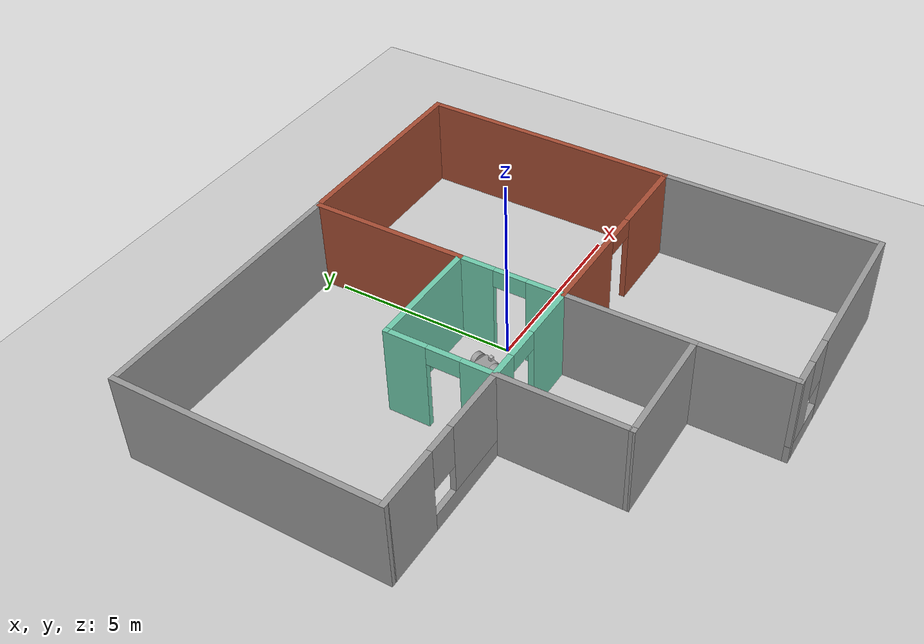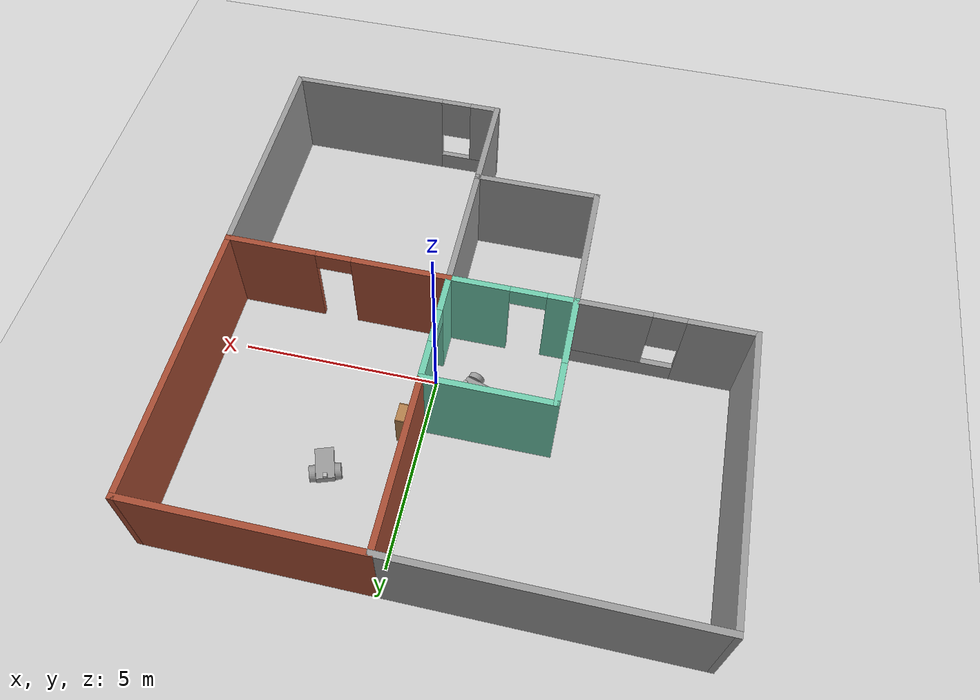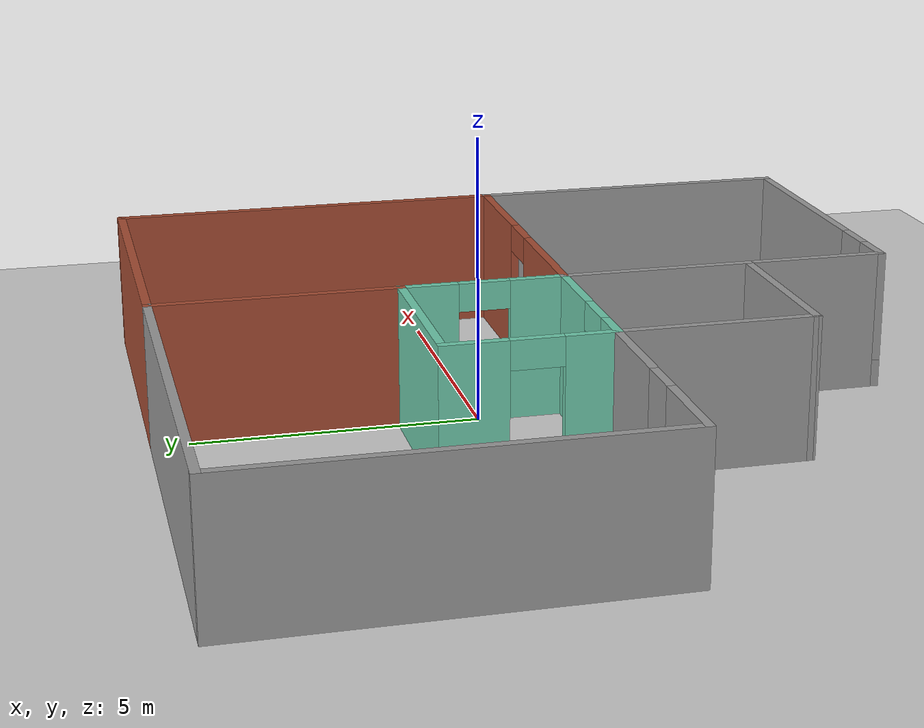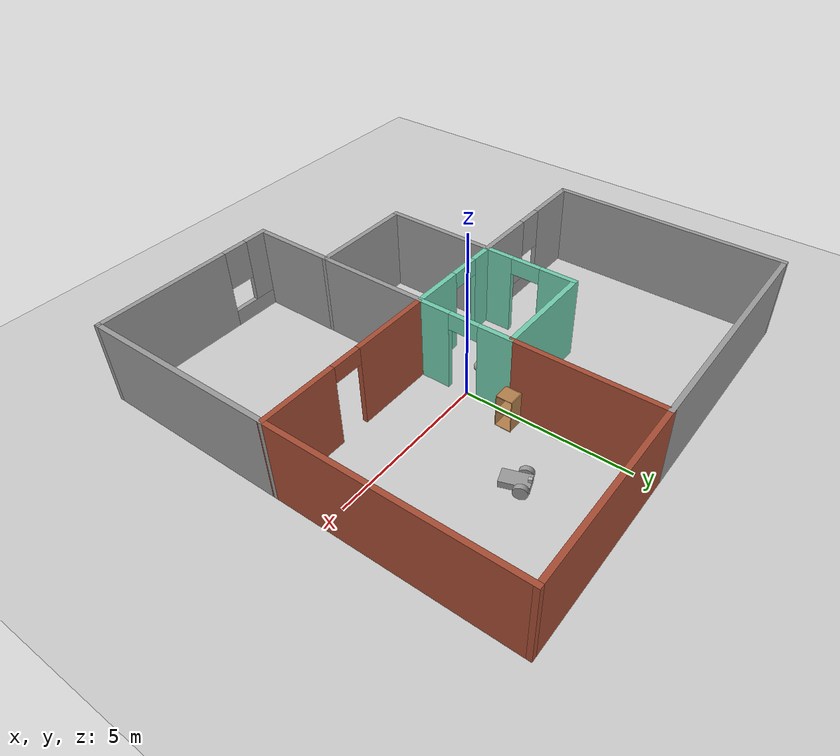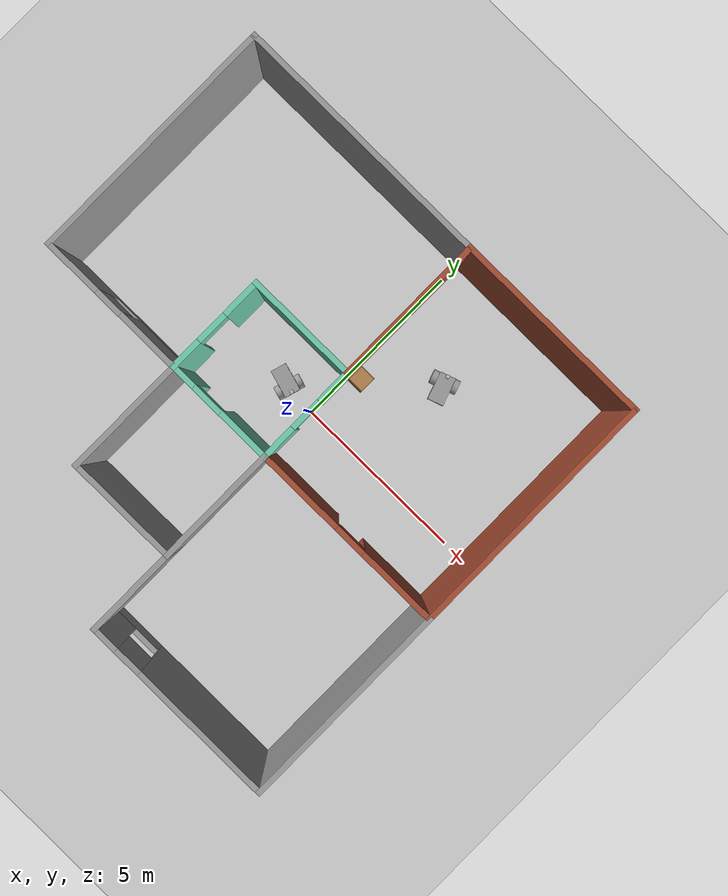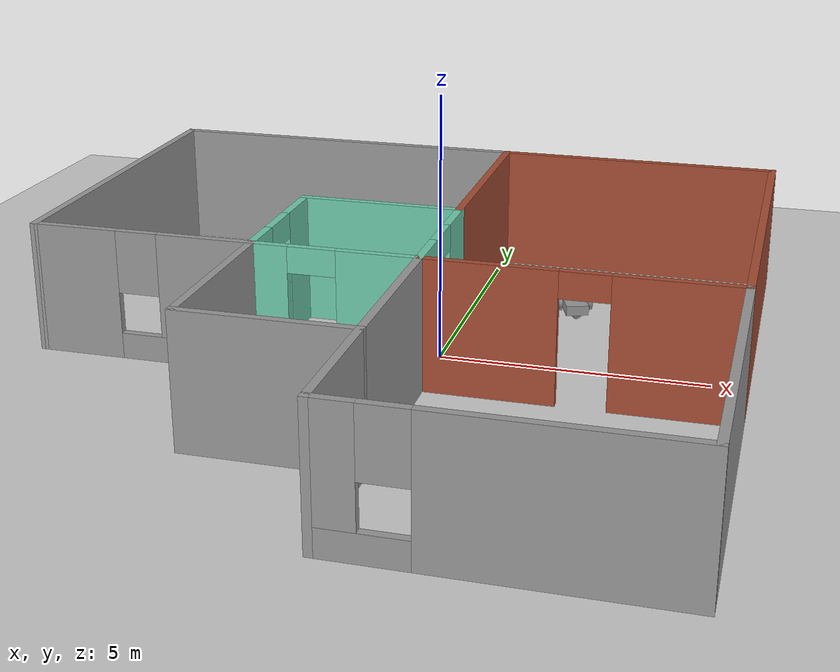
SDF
<sdf version="1.6">
 <world name="default">
  <plugin name="welcome" filename="libwelcome.so"/>
  <light name="sun" type="directional">
   <pose>0 0 10 0 -0 0</pose>
   <diffuse>0.8 0.8 0.8 1</diffuse>
   <specular>0.2 0.2 0.2 1</specular>
   <attenuation>
    <range>1000</range>
    <constant>0.9</constant>
    <linear>0.01</linear>
    <quadratic>0.001</quadratic>
   </attenuation>
   <direction>-0.5 0.1 -0.9</direction>
  </light>
  <model name="ground_plane">
   <static>1</static>
   <link name="link">
    <collision name="collision">
     <geometry><plane><normal>0 0 1</normal><size>100 100</size></plane></geometry>
     <surface><friction><ode><mu>100</mu><mu2>50</mu2></ode></friction></surface>
    </collision>
    <visual name="visual">
     <cast_shadows>0</cast_shadows>
     <geometry><plane><normal>0 0 1</normal><size>100 100</size></plane></geometry>
     <material>
      <script><uri>file://media/materials/scripts/gazebo.material</uri><name>Gazebo/Grey</name></script>
     </material>
    </visual>
   </link>
  </model>
  <gravity>0 0 -9.8</gravity>
  <magnetic_field>6e-06 2.3e-05 -4.2e-05</magnetic_field>
  <atmosphere type="adiabatic"/>
  <physics name="default_physics" default="0" type="ode">
   <max_step_size>0.001</max_step_size>
   <real_time_factor>1</real_time_factor>
   <real_time_update_rate>1000</real_time_update_rate>
  </physics>
  <scene><ambient>0.4 0.4 0.4 1</ambient><background>0.7 0.7 0.7 1</background><shadows>1</shadows></scene>
  <audio><device>default</device></audio>
  <spherical_coordinates>
   <surface_model>EARTH_WGS84</surface_model>
   <latitude_deg>0</latitude_deg>
   <longitude_deg>0</longitude_deg>
   <elevation>0</elevation>
   <heading_deg>0</heading_deg>
  </spherical_coordinates>
  <model name="model">
   <pose>-0.86393 -0.89424 0 0 -0 0</pose>
   <link name="Wall_10">
    <collision name="Wall_10_Collision">
     <geometry><box><size>5.75 0.15 2.5</size></box></geometry>
     <pose>0 0 1.25 0 -0 0</pose>
    </collision>
    <visual name="Wall_10_Visual">
     <pose>0 0 1.25 0 -0 0</pose>
     <geometry><box><size>5.75 0.15 2.5</size></box></geometry>
     <material>
      <script><uri>file://media/materials/scripts/gazebo.material</uri><name>Gazebo/Bricks</name></script>
      <ambient>1 1 1 1</ambient>
     </material>
     <meta><layer>0</layer></meta>
    </visual>
    <pose>3.67517 6.47508 0 0 -0 3.14159</pose>
   </link>
   <link name="Wall_11">
    <collision name="Wall_11_Collision">
     <geometry><box><size>4.4 0.15 2.5</size></box></geometry>
     <pose>0 0 1.25 0 -0 0</pose>
    </collision>
    <visual name="Wall_11_Visual">
     <pose>0 0 1.25 0 -0 0</pose>
     <geometry><box><size>4.4 0.15 2.5</size></box></geometry>
     <material>
      <script><uri>file://media/materials/scripts/gazebo.material</uri><name>Gazebo/Bricks</name></script>
      <ambient>1 1 1 1</ambient>
     </material>
     <meta><layer>0</layer></meta>
    </visual>
    <pose>0.875172 4.35008 0 0 -0 -1.5708</pose>
   </link>
   <link name="Wall_13">
    <collision name="Wall_13_Collision">
     <geometry><box><size>7.5 0.15 2.5</size></box></geometry>
     <pose>0 0 1.25 0 -0 0</pose>
    </collision>
    <visual name="Wall_13_Visual">
     <pose>0 0 1.25 0 -0 0</pose>
     <geometry><box><size>7.5 0.15 2.5</size></box></geometry>
     <material>
      <script><uri>file://media/materials/scripts/gazebo.material</uri><name>Gazebo/Grey</name></script>
      <ambient>1 1 1 1</ambient>
     </material>
     <meta><layer>0</layer></meta>
    </visual>
    <pose>-2.8 6.475 0 0 -0 -3.14157</pose>
   </link>
   <link name="Wall_14">
    <collision name="Wall_14_Collision">
     <geometry><box><size>7.25 0.15 2.5</size></box></geometry>
     <pose>0 0 1.25 0 -0 0</pose>
    </collision>
    <visual name="Wall_14_Visual">
     <pose>0 0 1.25 0 -0 0</pose>
     <geometry><box><size>7.25 0.15 2.5</size></box></geometry>
     <material>
      <script><uri>file://media/materials/scripts/gazebo.material</uri><name>Gazebo/Grey</name></script>
      <ambient>1 1 1 1</ambient>
     </material>
     <meta><layer>0</layer></meta>
    </visual>
    <pose>-6.47518 2.92492 0 0 -0 -1.5708</pose>
   </link>
   <link name="Wall_15">
    <pose>-4.35 -0.625001 0 0 -0 3.8e-05</pose>
    <visual name="Wall_15_Visual_0">
     <pose>-1.34375 0 1.25 0 -0 0</pose>
     <geometry><box><size>1.7125 0.15 2.5</size></box></geometry>
     <material>
      <script><uri>file://media/materials/scripts/gazebo.material</uri><name>Gazebo/Grey</name></script>
      <ambient>1 1 1 1</ambient>
     </material>
     <meta><layer>0</layer></meta>
    </visual>
    <collision name="Wall_15_Collision_0">
     <geometry><box><size>1.7125 0.15 2.5</size></box></geometry>
     <pose>-1.34375 0 1.25 0 -0 0</pose>
    </collision>
    <visual name="Wall_15_Visual_1">
     <pose>0.85625 0 0.25 0 -0 0</pose>
     <geometry><box><size>2.6875 0.15 0.5</size></box></geometry>
     <material>
      <script><uri>file://media/materials/scripts/gazebo.material</uri><name>Gazebo/Grey</name></script>
      <ambient>1 1 1 1</ambient>
     </material>
     <meta><layer>0</layer></meta>
    </visual>
    <collision name="Wall_15_Collision_1">
     <geometry><box><size>2.6875 0.15 0.5</size></box></geometry>
     <pose>0.85625 0 0.25 0 -0 0</pose>
    </collision>
    <visual name="Wall_15_Visual_2">
     <pose>1.25625 0 1.5 0 -0 0</pose>
     <geometry><box><size>1.8875 0.15 2</size></box></geometry>
     <material>
      <script><uri>file://media/materials/scripts/gazebo.material</uri><name>Gazebo/Grey</name></script>
      <ambient>1 1 1 1</ambient>
     </material>
     <meta><layer>0</layer></meta>
    </visual>
    <collision name="Wall_15_Collision_2">
     <geometry><box><size>1.8875 0.15 2</size></box></geometry>
     <pose>1.25625 0 1.5 0 -0 0</pose>
    </collision>
    <visual name="Wall_15_Visual_3">
     <pose>-0.0875 0 1.9 0 -0 0</pose>
     <geometry><box><size>0.8 0.15 1.2</size></box></geometry>
     <material>
      <script><uri>file://media/materials/scripts/gazebo.material</uri><name>Gazebo/Grey</name></script>
      <ambient>1 1 1 1</ambient>
     </material>
     <meta><layer>0</layer></meta>
    </visual>
    <collision name="Wall_15_Collision_3">
     <geometry><box><size>0.8 0.15 1.2</size></box></geometry>
     <pose>-0.0875 0 1.9 0 -0 0</pose>
    </collision>
   </link>
   <link name="Wall_16">
    <collision name="Wall_16_Collision">
     <geometry><box><size>3.5 0.15 2.5</size></box></geometry>
     <pose>0 0 1.25 0 -0 0</pose>
    </collision>
    <visual name="Wall_16_Visual">
     <pose>0 0 1.25 0 -0 0</pose>
     <geometry><box><size>3.5 0.15 2.5</size></box></geometry>
     <material>
      <script><uri>file://media/materials/scripts/gazebo.material</uri><name>Gazebo/Grey</name></script>
      <ambient>1 1 1 1</ambient>
     </material>
     <meta><layer>0</layer></meta>
    </visual>
    <pose>-2.225 -2.3 0 0 -0 -1.5709</pose>
   </link>
   <link name="Wall_17">
    <collision name="Wall_17_Collision">
     <geometry><box><size>3.25 0.15 2.5</size></box></geometry>
     <pose>0 0 1.25 0 -0 0</pose>
    </collision>
    <visual name="Wall_17_Visual">
     <pose>0 0 1.25 0 -0 0</pose>
     <geometry><box><size>3.25 0.15 2.5</size></box></geometry>
     <material>
      <script><uri>file://media/materials/scripts/gazebo.material</uri><name>Gazebo/Grey</name></script>
      <ambient>1 1 1 1</ambient>
     </material>
     <meta><layer>0</layer></meta>
    </visual>
    <pose>-0.675176 -3.97508 0 0 -0 0</pose>
   </link>
   <link name="Wall_18">
    <collision name="Wall_18_Collision">
     <geometry><box><size>3.5 0.15 2.5</size></box></geometry>
     <pose>0 0 1.25 0 -0 0</pose>
    </collision>
    <visual name="Wall_18_Visual">
     <pose>0 0 1.25 0 -0 0</pose>
     <geometry><box><size>3.5 0.15 2.5</size></box></geometry>
     <material>
      <script><uri>file://media/materials/scripts/gazebo.material</uri><name>Gazebo/Grey</name></script>
      <ambient>1 1 1 1</ambient>
     </material>
     <meta><layer>0</layer></meta>
    </visual>
    <pose>0.874998 -2.3 0 0 -0 1.57069</pose>
   </link>
   <link name="Wall_20">
    <collision name="Wall_20_Collision">
     <geometry><box><size>6 0.15 2.5</size></box></geometry>
     <pose>0 0 1.25 0 -0 0</pose>
    </collision>
    <visual name="Wall_20_Visual">
     <pose>0 0 1.25 0 -0 0</pose>
     <geometry><box><size>6 0.15 2.5</size></box></geometry>
     <material>
      <script><uri>file://media/materials/scripts/gazebo.material</uri><name>Gazebo/Grey</name></script>
      <ambient>1 1 1 1</ambient>
     </material>
     <meta><layer>0</layer></meta>
    </visual>
    <pose>6.475 -3.55 0 0 -0 -1.57086</pose>
   </link>
   <link name="Wall_21">
    <pose>3.67482 -6.47508 0 0 -0 3.14159</pose>
    <visual name="Wall_21_Visual_0">
     <pose>-0.799425 0 1.25 0 -0 0</pose>
     <geometry><box><size>4.15115 0.15 2.5</size></box></geometry>
     <material>
      <script><uri>file://media/materials/scripts/gazebo.material</uri><name>Gazebo/Grey</name></script>
      <ambient>1 1 1 1</ambient>
     </material>
     <meta><layer>0</layer></meta>
    </visual>
    <collision name="Wall_21_Collision_0">
     <geometry><box><size>4.15115 0.15 2.5</size></box></geometry>
     <pose>-0.799425 0 1.25 0 -0 0</pose>
    </collision>
    <visual name="Wall_21_Visual_1">
     <pose>2.07558 0 0.25 0 -0 0</pose>
     <geometry><box><size>1.59885 0.15 0.5</size></box></geometry>
     <material>
      <script><uri>file://media/materials/scripts/gazebo.material</uri><name>Gazebo/Grey</name></script>
      <ambient>1 1 1 1</ambient>
     </material>
     <meta><layer>0</layer></meta>
    </visual>
    <collision name="Wall_21_Collision_1">
     <geometry><box><size>1.59885 0.15 0.5</size></box></geometry>
     <pose>2.07558 0 0.25 0 -0 0</pose>
    </collision>
    <visual name="Wall_21_Visual_2">
     <pose>2.47558 0 1.5 0 -0 0</pose>
     <geometry><box><size>0.79885 0.15 2</size></box></geometry>
     <material>
      <script><uri>file://media/materials/scripts/gazebo.material</uri><name>Gazebo/Grey</name></script>
      <ambient>1 1 1 1</ambient>
     </material>
     <meta><layer>0</layer></meta>
    </visual>
    <collision name="Wall_21_Collision_2">
     <geometry><box><size>0.79885 0.15 2</size></box></geometry>
     <pose>2.47558 0 1.5 0 -0 0</pose>
    </collision>
    <visual name="Wall_21_Visual_3">
     <pose>1.67615 0 1.9 0 -0 0</pose>
     <geometry><box><size>0.8 0.15 1.2</size></box></geometry>
     <material>
      <script><uri>file://media/materials/scripts/gazebo.material</uri><name>Gazebo/Grey</name></script>
      <ambient>1 1 1 1</ambient>
     </material>
     <meta><layer>0</layer></meta>
    </visual>
    <collision name="Wall_21_Collision_3">
     <geometry><box><size>0.8 0.15 1.2</size></box></geometry>
     <pose>1.67615 0 1.9 0 -0 0</pose>
    </collision>
   </link>
   <link name="Wall_22">
    <collision name="Wall_22_Collision">
     <geometry><box><size>2.65 0.15 2.5</size></box></geometry>
     <pose>0 0 1.25 0 -0 0</pose>
    </collision>
    <visual name="Wall_22_Visual">
     <pose>0 0 1.25 0 -0 0</pose>
     <geometry><box><size>2.65 0.15 2.5</size></box></geometry>
     <material>
      <script><uri>file://media/materials/scripts/gazebo.material</uri><name>Gazebo/Grey</name></script>
      <ambient>1 1 1 1</ambient>
     </material>
     <meta><layer>0</layer></meta>
    </visual>
    <pose>0.874824 -5.22508 0 0 -0 1.5708</pose>
   </link>
   <link name="Wall_3">
    <collision name="Wall_3_Collision">
     <geometry><box><size>3.25 0.15 2.5</size></box></geometry>
     <pose>0 0 1.25 0 -0 0</pose>
    </collision>
    <visual name="Wall_3_Visual">
     <pose>0 0 1.25 0 -0 0</pose>
     <geometry><box><size>3.25 0.15 2.5</size></box></geometry>
     <material>
      <script><uri>file://media/materials/scripts/gazebo.material</uri><name>Gazebo/Grey</name></script>
      <ambient>0.435294 0.796078 0.67451 1</ambient>
     </material>
     <meta><layer>0</layer></meta>
    </visual>
    <pose>-0.674828 2.22508 0 0 -0 0</pose>
   </link>
   <link name="Wall_4">
    <pose>0.875172 0.80008 0 0 -0 -1.5708</pose>
    <visual name="Wall_4_Visual_0">
     <pose>-0.973468 0 1.25 0 -0 0</pose>
     <geometry><box><size>1.05306 0.15 2.5</size></box></geometry>
     <material>
      <script><uri>file://media/materials/scripts/gazebo.material</uri><name>Gazebo/Grey</name></script>
      <ambient>0.435294 0.796078 0.67451 1</ambient>
     </material>
     <meta><layer>0</layer></meta>
    </visual>
    <collision name="Wall_4_Collision_0">
     <geometry><box><size>1.05306 0.15 2.5</size></box></geometry>
     <pose>-0.973468 0 1.25 0 -0 0</pose>
    </collision>
    <visual name="Wall_4_Visual_1">
     <pose>0.976532 0 1.25 0 -0 0</pose>
     <geometry><box><size>1.04694 0.15 2.5</size></box></geometry>
     <material>
      <script><uri>file://media/materials/scripts/gazebo.material</uri><name>Gazebo/Grey</name></script>
      <ambient>0.435294 0.796078 0.67451 1</ambient>
     </material>
     <meta><layer>0</layer></meta>
    </visual>
    <collision name="Wall_4_Collision_1">
     <geometry><box><size>1.04694 0.15 2.5</size></box></geometry>
     <pose>0.976532 0 1.25 0 -0 0</pose>
    </collision>
    <visual name="Wall_4_Visual_2">
     <pose>0.003064 0 2.25 0 -0 0</pose>
     <geometry><box><size>0.9 0.15 0.5</size></box></geometry>
     <material>
      <script><uri>file://media/materials/scripts/gazebo.material</uri><name>Gazebo/Grey</name></script>
      <ambient>0.435294 0.796078 0.67451 1</ambient>
     </material>
     <meta><layer>0</layer></meta>
    </visual>
    <collision name="Wall_4_Collision_2">
     <geometry><box><size>0.9 0.15 0.5</size></box></geometry>
     <pose>0.003064 0 2.25 0 -0 0</pose>
    </collision>
   </link>
   <link name="Wall_5">
    <pose>-0.674828 -0.62492 0 0 -0 3.14159</pose>
    <visual name="Wall_5_Visual_0">
     <pose>-0.835737 0 1.25 0 -0 0</pose>
     <geometry><box><size>1.57853 0.15 2.5</size></box></geometry>
     <material>
      <script><uri>file://media/materials/scripts/gazebo.material</uri><name>Gazebo/Grey</name></script>
      <ambient>0.435294 0.796078 0.67451 1</ambient>
     </material>
     <meta><layer>0</layer></meta>
    </visual>
    <collision name="Wall_5_Collision_0">
     <geometry><box><size>1.57853 0.15 2.5</size></box></geometry>
     <pose>-0.835737 0 1.25 0 -0 0</pose>
    </collision>
    <visual name="Wall_5_Visual_1">
     <pose>1.23926 0 1.25 0 -0 0</pose>
     <geometry><box><size>0.771474 0.15 2.5</size></box></geometry>
     <material>
      <script><uri>file://media/materials/scripts/gazebo.material</uri><name>Gazebo/Grey</name></script>
      <ambient>0.435294 0.796078 0.67451 1</ambient>
     </material>
     <meta><layer>0</layer></meta>
    </visual>
    <collision name="Wall_5_Collision_1">
     <geometry><box><size>0.771474 0.15 2.5</size></box></geometry>
     <pose>1.23926 0 1.25 0 -0 0</pose>
    </collision>
    <visual name="Wall_5_Visual_2">
     <pose>0.403526 0 2.25 0 -0 0</pose>
     <geometry><box><size>0.9 0.15 0.5</size></box></geometry>
     <material>
      <script><uri>file://media/materials/scripts/gazebo.material</uri><name>Gazebo/Grey</name></script>
      <ambient>0.435294 0.796078 0.67451 1</ambient>
     </material>
     <meta><layer>0</layer></meta>
    </visual>
    <collision name="Wall_5_Collision_2">
     <geometry><box><size>0.9 0.15 0.5</size></box></geometry>
     <pose>0.403526 0 2.25 0 -0 0</pose>
    </collision>
   </link>
   <link name="Wall_6">
    <pose>-2.22483 0.80008 0 0 -0 1.5708</pose>
    <visual name="Wall_6_Visual_0">
     <pose>-1.02682 0 1.25 0 -0 0</pose>
     <geometry><box><size>0.946369 0.15 2.5</size></box></geometry>
     <material>
      <script><uri>file://media/materials/scripts/gazebo.material</uri><name>Gazebo/Grey</name></script>
      <ambient>0.435294 0.796078 0.67451 1</ambient>
     </material>
     <meta><layer>0</layer></meta>
    </visual>
    <collision name="Wall_6_Collision_0">
     <geometry><box><size>0.946369 0.15 2.5</size></box></geometry>
     <pose>-1.02682 0 1.25 0 -0 0</pose>
    </collision>
    <visual name="Wall_6_Visual_1">
     <pose>0.923184 0 1.25 0 -0 0</pose>
     <geometry><box><size>1.15363 0.15 2.5</size></box></geometry>
     <material>
      <script><uri>file://media/materials/scripts/gazebo.material</uri><name>Gazebo/Grey</name></script>
      <ambient>0.435294 0.796078 0.67451 1</ambient>
     </material>
     <meta><layer>0</layer></meta>
    </visual>
    <collision name="Wall_6_Collision_1">
     <geometry><box><size>1.15363 0.15 2.5</size></box></geometry>
     <pose>0.923184 0 1.25 0 -0 0</pose>
    </collision>
    <visual name="Wall_6_Visual_2">
     <pose>-0.103631 0 2.25 0 -0 0</pose>
     <geometry><box><size>0.9 0.15 0.5</size></box></geometry>
     <material>
      <script><uri>file://media/materials/scripts/gazebo.material</uri><name>Gazebo/Grey</name></script>
      <ambient>0.435294 0.796078 0.67451 1</ambient>
     </material>
     <meta><layer>0</layer></meta>
    </visual>
    <collision name="Wall_6_Collision_2">
     <geometry><box><size>0.9 0.15 0.5</size></box></geometry>
     <pose>-0.103631 0 2.25 0 -0 0</pose>
    </collision>
   </link>
   <link name="Wall_8">
    <pose>3.67517 -0.62492 0 0 -0 0</pose>
    <visual name="Wall_8_Visual_0">
     <pose>-1.61558 0 1.25 0 -0 0</pose>
     <geometry><box><size>2.51884 0.15 2.5</size></box></geometry>
     <material>
      <script><uri>file://media/materials/scripts/gazebo.material</uri><name>Gazebo/Bricks</name></script>
      <ambient>1 1 1 1</ambient>
     </material>
     <meta><layer>0</layer></meta>
    </visual>
    <collision name="Wall_8_Collision_0">
     <geometry><box><size>2.51884 0.15 2.5</size></box></geometry>
     <pose>-1.61558 0 1.25 0 -0 0</pose>
    </collision>
    <visual name="Wall_8_Visual_1">
     <pose>1.70942 0 1.25 0 -0 0</pose>
     <geometry><box><size>2.33116 0.15 2.5</size></box></geometry>
     <material>
      <script><uri>file://media/materials/scripts/gazebo.material</uri><name>Gazebo/Bricks</name></script>
      <ambient>1 1 1 1</ambient>
     </material>
     <meta><layer>0</layer></meta>
    </visual>
    <collision name="Wall_8_Collision_1">
     <geometry><box><size>2.33116 0.15 2.5</size></box></geometry>
     <pose>1.70942 0 1.25 0 -0 0</pose>
    </collision>
    <visual name="Wall_8_Visual_2">
     <pose>0.093844 0 2.25 0 -0 0</pose>
     <geometry><box><size>0.9 0.15 0.5</size></box></geometry>
     <material>
      <script><uri>file://media/materials/scripts/gazebo.material</uri><name>Gazebo/Bricks</name></script>
      <ambient>1 1 1 1</ambient>
     </material>
     <meta><layer>0</layer></meta>
    </visual>
    <collision name="Wall_8_Collision_2">
     <geometry><box><size>0.9 0.15 0.5</size></box></geometry>
     <pose>0.093844 0 2.25 0 -0 0</pose>
    </collision>
   </link>
   <link name="Wall_9">
    <collision name="Wall_9_Collision">
     <geometry><box><size>7.25 0.15 2.5</size></box></geometry>
     <pose>0 0 1.25 0 -0 0</pose>
    </collision>
    <visual name="Wall_9_Visual">
     <pose>0 0 1.25 0 -0 0</pose>
     <geometry><box><size>7.25 0.15 2.5</size></box></geometry>
     <material>
      <script><uri>file://media/materials/scripts/gazebo.material</uri><name>Gazebo/Bricks</name></script>
      <ambient>1 1 1 1</ambient>
     </material>
     <meta><layer>0</layer></meta>
    </visual>
    <pose>6.47517 2.92508 0 0 -0 1.5708</pose>
   </link>
   <static>1</static>
  </model>
  <model name="model_0">
   <link name="link_0">
    <inertial>
     <mass>1.00629</mass>
     <inertia>
      <ixx>0.119355</ixx>
      <ixy>0</ixy>
      <ixz>0</ixz>
      <iyy>0.286315</iyy>
      <iyz>0</iyz>
      <izz>0.358071</izz>
     </inertia>
    </inertial>
    <pose>-0.389773 -0 0.3 0 -0 0</pose>
    <visual name="visual">
     <geometry><box><size>0.8 0.45 0.2</size></box></geometry>
     <material>
      <lighting>1</lighting>
      <script><uri>file://media/materials/scripts/gazebo.material</uri><name>Gazebo/Grey</name></script>
      <shader type="vertex"><normal_map>__default__</normal_map></shader>
      <ambient>0.3 0.3 0.3 1</ambient>
      <diffuse>0.7 0.7 0.7 1</diffuse>
      <specular>0.01 0.01 0.01 1</specular>
      <emissive>0 0 0 1</emissive>
     </material>
    </visual>
    <collision name="collision">
     <geometry><box><size>0.8 0.45 0.2</size></box></geometry>
     <surface>
      <friction>
       <ode><mu>1</mu><mu2>1</mu2><fdir1>0 0 0</fdir1><slip1>0</slip1><slip2>0</slip2></ode>
       <torsional>
        <coefficient>1</coefficient>
        <patch_radius>0</patch_radius>
        <surface_radius>0</surface_radius>
        <use_patch_radius>1</use_patch_radius>
        <ode><slip>0</slip></ode>
       </torsional>
      </friction>
      <bounce><restitution_coefficient>0</restitution_coefficient><threshold>1e+06</threshold></bounce>
      <contact>
       <collide_without_contact>0</collide_without_contact>
       <collide_without_contact_bitmask>1</collide_without_contact_bitmask>
       <collide_bitmask>1</collide_bitmask>
       <ode>
        <soft_cfm>0</soft_cfm>
        <soft_erp>0.2</soft_erp>
        <kp>1e+13</kp>
        <kd>1</kd>
        <max_vel>0.01</max_vel>
        <min_depth>0</min_depth>
       </ode>
       <bullet>
        <split_impulse>1</split_impulse>
        <split_impulse_penetration_threshold>-0.01</split_impulse_penetration_threshold>
        <soft_cfm>0</soft_cfm>
        <soft_erp>0.2</soft_erp>
        <kp>1e+13</kp>
        <kd>1</kd>
       </bullet>
      </contact>
     </surface>
    </collision>
   </link>
   <link name="link_0_0">
    <inertial>
     <mass>1</mass>
     <inertia><ixx>0.1</ixx><ixy>0</ixy><ixz>0</ixz><iyy>0.1</iyy><iyz>0</iyz><izz>0.1</izz></inertia>
    </inertial>
    <pose>-0.689795 3.2e-05 0.199999 0 -0 0</pose>
    <visual name="visual">
     <geometry><sphere><radius>0.1</radius></sphere></geometry>
     <material>
      <lighting>1</lighting>
      <script><uri>file://media/materials/scripts/gazebo.material</uri><name>Gazebo/Grey</name></script>
      <shader type="vertex"><normal_map>__default__</normal_map></shader>
      <ambient>0.3 0.3 0.3 1</ambient>
      <diffuse>0.7 0.7 0.7 1</diffuse>
      <specular>0.01 0.01 0.01 1</specular>
      <emissive>0 0 0 1</emissive>
     </material>
    </visual>
    <collision name="collision">
     <geometry><sphere><radius>0.1</radius></sphere></geometry>
     <surface>
      <friction>
       <ode><mu>1</mu><mu2>1</mu2><fdir1>0 0 0</fdir1><slip1>0</slip1><slip2>0</slip2></ode>
       <torsional>
        <coefficient>1</coefficient>
        <patch_radius>0</patch_radius>
        <surface_radius>0</surface_radius>
        <use_patch_radius>1</use_patch_radius>
        <ode><slip>0</slip></ode>
       </torsional>
      </friction>
      <bounce><restitution_coefficient>0</restitution_coefficient><threshold>1e+06</threshold></bounce>
      <contact>
       <collide_without_contact>0</collide_without_contact>
       <collide_without_contact_bitmask>1</collide_without_contact_bitmask>
       <collide_bitmask>1</collide_bitmask>
       <ode>
        <soft_cfm>0</soft_cfm>
        <soft_erp>0.2</soft_erp>
        <kp>1e+13</kp>
        <kd>1</kd>
        <max_vel>0.01</max_vel>
        <min_depth>0</min_depth>
       </ode>
       <bullet>
        <split_impulse>1</split_impulse>
        <split_impulse_penetration_threshold>-0.01</split_impulse_penetration_threshold>
        <soft_cfm>0</soft_cfm>
        <soft_erp>0.2</soft_erp>
        <kp>1e+13</kp>
        <kd>1</kd>
       </bullet>
      </contact>
     </surface>
    </collision>
   </link>
   <link name="link_1">
    <inertial>
     <mass>1</mass>
     <inertia><ixx>0.145833</ixx><ixy>0</ixy><ixz>0</ixz><iyy>0.145833</iyy><iyz>0</iyz><izz>0.125</izz></inertia>
    </inertial>
    <pose>-0.189783 -0.300107 0.300001 1.5707 -0 0</pose>
    <visual name="visual">
     <geometry><cylinder><radius>0.2</radius><length>0.15</length></cylinder></geometry>
     <material>
      <lighting>1</lighting>
      <script><uri>file://media/materials/scripts/gazebo.material</uri><name>Gazebo/Grey</name></script>
      <shader type="vertex"><normal_map>__default__</normal_map></shader>
      <ambient>0.3 0.3 0.3 1</ambient>
      <diffuse>0.7 0.7 0.7 1</diffuse>
      <specular>0.01 0.01 0.01 1</specular>
      <emissive>0 0 0 1</emissive>
     </material>
    </visual>
    <collision name="collision">
     <geometry><cylinder><radius>0.2</radius><length>0.15</length></cylinder></geometry>
     <surface>
      <friction>
       <ode><mu>1</mu><mu2>1</mu2><fdir1>0 0 0</fdir1><slip1>0</slip1><slip2>0</slip2></ode>
       <torsional>
        <coefficient>1</coefficient>
        <patch_radius>0</patch_radius>
        <surface_radius>0</surface_radius>
        <use_patch_radius>1</use_patch_radius>
        <ode><slip>0</slip></ode>
       </torsional>
      </friction>
      <bounce><restitution_coefficient>0</restitution_coefficient><threshold>1e+06</threshold></bounce>
      <contact>
       <collide_without_contact>0</collide_without_contact>
       <collide_without_contact_bitmask>1</collide_without_contact_bitmask>
       <collide_bitmask>1</collide_bitmask>
       <ode>
        <soft_cfm>0</soft_cfm>
        <soft_erp>0.2</soft_erp>
        <kp>1e+13</kp>
        <kd>1</kd>
        <max_vel>0.01</max_vel>
        <min_depth>0</min_depth>
       </ode>
       <bullet>
        <split_impulse>1</split_impulse>
        <split_impulse_penetration_threshold>-0.01</split_impulse_penetration_threshold>
        <soft_cfm>0</soft_cfm>
        <soft_erp>0.2</soft_erp>
        <kp>1e+13</kp>
        <kd>1</kd>
       </bullet>
      </contact>
     </surface>
    </collision>
   </link>
   <link name="link_1_clone">
    <inertial>
     <mass>1</mass>
     <inertia><ixx>0.145833</ixx><ixy>0</ixy><ixz>0</ixz><iyy>0.145833</iyy><iyz>0</iyz><izz>0.125</izz></inertia>
    </inertial>
    <pose>-0.189716 0.306996 0.300002 1.5707 -0 0</pose>
    <visual name="visual">
     <geometry><cylinder><radius>0.2</radius><length>0.15</length></cylinder></geometry>
     <material>
      <lighting>1</lighting>
      <script><uri>file://media/materials/scripts/gazebo.material</uri><name>Gazebo/Grey</name></script>
      <shader type="vertex"><normal_map>__default__</normal_map></shader>
      <ambient>0.3 0.3 0.3 1</ambient>
      <diffuse>0.7 0.7 0.7 1</diffuse>
      <specular>0.01 0.01 0.01 1</specular>
      <emissive>0 0 0 1</emissive>
     </material>
    </visual>
    <collision name="collision">
     <geometry><cylinder><radius>0.2</radius><length>0.15</length></cylinder></geometry>
     <surface>
      <friction>
       <ode><mu>1</mu><mu2>1</mu2><fdir1>0 0 0</fdir1><slip1>0</slip1><slip2>0</slip2></ode>
       <torsional>
        <coefficient>1</coefficient>
        <patch_radius>0</patch_radius>
        <surface_radius>0</surface_radius>
        <use_patch_radius>1</use_patch_radius>
        <ode><slip>0</slip></ode>
       </torsional>
      </friction>
      <bounce><restitution_coefficient>0</restitution_coefficient><threshold>1e+06</threshold></bounce>
      <contact>
       <collide_without_contact>0</collide_without_contact>
       <collide_without_contact_bitmask>1</collide_without_contact_bitmask>
       <collide_bitmask>1</collide_bitmask>
       <ode>
        <soft_cfm>0</soft_cfm>
        <soft_erp>0.2</soft_erp>
        <kp>1e+13</kp>
        <kd>1</kd>
        <max_vel>0.01</max_vel>
        <min_depth>0</min_depth>
       </ode>
       <bullet>
        <split_impulse>1</split_impulse>
        <split_impulse_penetration_threshold>-0.01</split_impulse_penetration_threshold>
        <soft_cfm>0</soft_cfm>
        <soft_erp>0.2</soft_erp>
        <kp>1e+13</kp>
        <kd>1</kd>
       </bullet>
      </contact>
     </surface>
    </collision>
   </link>
   <model name="depth_camera">
    <link name="link">
     <pose>0 0 0.05 0 -0 0</pose>
     <inertial>
      <mass>0.1</mass>
      <inertia>
       <ixx>0.000166667</ixx>
       <iyy>0.000166667</iyy>
       <izz>0.000166667</izz>
       <ixy>0</ixy>
       <ixz>0</ixz>
       <iyz>0</iyz>
      </inertia>
     </inertial>
     <collision name="collision"><geometry><box><size>0.1 0.1 0.1</size></box></geometry></collision>
     <visual name="visual"><geometry><box><size>0.1 0.1 0.1</size></box></geometry></visual>
     <sensor name="camera" type="depth">
      <camera name="__default__">
       <horizontal_fov>1.047</horizontal_fov>
       <image><width>320</width><height>240</height></image>
       <clip><near>0.1</near><far>100</far></clip>
      </camera>
      <always_on>1</always_on>
      <update_rate>30</update_rate>
      <visualize>1</visualize>
     </sensor>
    </link>
    <pose>0.010255 -3.8e-05 0.449999 0.198715 -1.57079 -0.198715</pose>
   </model>
   <joint name="link_0_JOINT_1" type="revolute">
    <parent>link_0</parent>
    <child>link_1</child>
    <axis>
     <xyz>0 0 1</xyz>
     <use_parent_model_frame>0</use_parent_model_frame>
     <limit>
      <lower>-1.79769e+308</lower>
      <upper>1.79769e+308</upper>
      <effort>-1</effort>
      <velocity>-1</velocity>
     </limit>
     <dynamics>
      <spring_reference>0</spring_reference>
      <spring_stiffness>0</spring_stiffness>
      <damping>0</damping>
      <friction>0</friction>
     </dynamics>
    </axis>
    <physics>
     <ode><limit><cfm>0</cfm><erp>0.2</erp></limit><suspension><cfm>0</cfm><erp>0.2</erp></suspension></ode>
    </physics>
   </joint>
   <joint name="link_0_JOINT_2" type="revolute">
    <parent>link_0</parent>
    <child>link_1_clone</child>
    <axis>
     <xyz>1 0 0</xyz>
     <use_parent_model_frame>0</use_parent_model_frame>
     <limit>
      <lower>-1.79769e+308</lower>
      <upper>1.79769e+308</upper>
      <effort>-1</effort>
      <velocity>-1</velocity>
     </limit>
     <dynamics>
      <spring_reference>0</spring_reference>
      <spring_stiffness>0</spring_stiffness>
      <damping>0</damping>
      <friction>0</friction>
     </dynamics>
    </axis>
    <physics>
     <ode><limit><cfm>0</cfm><erp>0.2</erp></limit><suspension><cfm>0</cfm><erp>0.2</erp></suspension></ode>
    </physics>
   </joint>
   <joint name="link_0_JOINT_3" type="ball">
    <parent>link_0</parent>
    <child>link_0_0</child>
    <physics>
     <ode><limit><cfm>0</cfm><erp>0.2</erp></limit><suspension><cfm>0</cfm><erp>0.2</erp></suspension></ode>
    </physics>
   </joint>
   <joint name="link_JOINT_5" type="fixed">
    <parent>depth_camera::link</parent>
    <child>link_0</child>
    <physics>
     <ode><limit><cfm>0</cfm><erp>0.2</erp></limit><suspension><cfm>0</cfm><erp>0.2</erp></suspension></ode>
    </physics>
   </joint>
   <static>0</static>
   <pose>-0.716864 0.010579 -0.099999 -2.4e-05 0 -0.286252</pose>
  </model>
  <model name="model_1">
   <link name="link_0">
    <inertial>
     <mass>1.00629</mass>
     <inertia>
      <ixx>0.119355</ixx>
      <ixy>0</ixy>
      <ixz>0</ixz>
      <iyy>0.286315</iyy>
      <iyz>0</iyz>
      <izz>0.358071</izz>
     </inertia>
    </inertial>
    <pose>-0.389773 -0 0.3 0 -0 0</pose>
    <visual name="visual">
     <geometry><box><size>0.8 0.45 0.2</size></box></geometry>
     <material>
      <lighting>1</lighting>
      <script><uri>file://media/materials/scripts/gazebo.material</uri><name>Gazebo/Grey</name></script>
      <shader type="vertex"><normal_map>__default__</normal_map></shader>
      <ambient>0.3 0.3 0.3 1</ambient>
      <diffuse>0.7 0.7 0.7 1</diffuse>
      <specular>0.01 0.01 0.01 1</specular>
      <emissive>0 0 0 1</emissive>
     </material>
    </visual>
    <collision name="collision">
     <geometry><box><size>0.8 0.45 0.2</size></box></geometry>
     <surface>
      <friction>
       <ode><mu>1</mu><mu2>1</mu2><fdir1>0 0 0</fdir1><slip1>0</slip1><slip2>0</slip2></ode>
       <torsional>
        <coefficient>1</coefficient>
        <patch_radius>0</patch_radius>
        <surface_radius>0</surface_radius>
        <use_patch_radius>1</use_patch_radius>
        <ode><slip>0</slip></ode>
       </torsional>
      </friction>
      <bounce><restitution_coefficient>0</restitution_coefficient><threshold>1e+06</threshold></bounce>
      <contact>
       <collide_without_contact>0</collide_without_contact>
       <collide_without_contact_bitmask>1</collide_without_contact_bitmask>
       <collide_bitmask>1</collide_bitmask>
       <ode>
        <soft_cfm>0</soft_cfm>
        <soft_erp>0.2</soft_erp>
        <kp>1e+13</kp>
        <kd>1</kd>
        <max_vel>0.01</max_vel>
        <min_depth>0</min_depth>
       </ode>
       <bullet>
        <split_impulse>1</split_impulse>
        <split_impulse_penetration_threshold>-0.01</split_impulse_penetration_threshold>
        <soft_cfm>0</soft_cfm>
        <soft_erp>0.2</soft_erp>
        <kp>1e+13</kp>
        <kd>1</kd>
       </bullet>
      </contact>
     </surface>
    </collision>
   </link>
   <link name="link_0_0">
    <inertial>
     <mass>1</mass>
     <inertia><ixx>0.1</ixx><ixy>0</ixy><ixz>0</ixz><iyy>0.1</iyy><iyz>0</iyz><izz>0.1</izz></inertia>
    </inertial>
    <pose>-0.689795 3.2e-05 0.199999 0 -0 0</pose>
    <visual name="visual">
     <geometry><sphere><radius>0.1</radius></sphere></geometry>
     <material>
      <lighting>1</lighting>
      <script><uri>file://media/materials/scripts/gazebo.material</uri><name>Gazebo/Grey</name></script>
      <shader type="vertex"><normal_map>__default__</normal_map></shader>
      <ambient>0.3 0.3 0.3 1</ambient>
      <diffuse>0.7 0.7 0.7 1</diffuse>
      <specular>0.01 0.01 0.01 1</specular>
      <emissive>0 0 0 1</emissive>
     </material>
    </visual>
    <collision name="collision">
     <geometry><sphere><radius>0.1</radius></sphere></geometry>
     <surface>
      <friction>
       <ode><mu>1</mu><mu2>1</mu2><fdir1>0 0 0</fdir1><slip1>0</slip1><slip2>0</slip2></ode>
       <torsional>
        <coefficient>1</coefficient>
        <patch_radius>0</patch_radius>
        <surface_radius>0</surface_radius>
        <use_patch_radius>1</use_patch_radius>
        <ode><slip>0</slip></ode>
       </torsional>
      </friction>
      <bounce><restitution_coefficient>0</restitution_coefficient><threshold>1e+06</threshold></bounce>
      <contact>
       <collide_without_contact>0</collide_without_contact>
       <collide_without_contact_bitmask>1</collide_without_contact_bitmask>
       <collide_bitmask>1</collide_bitmask>
       <ode>
        <soft_cfm>0</soft_cfm>
        <soft_erp>0.2</soft_erp>
        <kp>1e+13</kp>
        <kd>1</kd>
        <max_vel>0.01</max_vel>
        <min_depth>0</min_depth>
       </ode>
       <bullet>
        <split_impulse>1</split_impulse>
        <split_impulse_penetration_threshold>-0.01</split_impulse_penetration_threshold>
        <soft_cfm>0</soft_cfm>
        <soft_erp>0.2</soft_erp>
        <kp>1e+13</kp>
        <kd>1</kd>
       </bullet>
      </contact>
     </surface>
    </collision>
   </link>
   <link name="link_1">
    <inertial>
     <mass>1</mass>
     <inertia><ixx>0.145833</ixx><ixy>0</ixy><ixz>0</ixz><iyy>0.145833</iyy><iyz>0</iyz><izz>0.125</izz></inertia>
    </inertial>
    <pose>-0.189783 -0.300107 0.300001 1.5707 -0 0</pose>
    <visual name="visual">
     <geometry><cylinder><radius>0.2</radius><length>0.15</length></cylinder></geometry>
     <material>
      <lighting>1</lighting>
      <script><uri>file://media/materials/scripts/gazebo.material</uri><name>Gazebo/Grey</name></script>
      <shader type="vertex"><normal_map>__default__</normal_map></shader>
      <ambient>0.3 0.3 0.3 1</ambient>
      <diffuse>0.7 0.7 0.7 1</diffuse>
      <specular>0.01 0.01 0.01 1</specular>
      <emissive>0 0 0 1</emissive>
     </material>
    </visual>
    <collision name="collision">
     <geometry><cylinder><radius>0.2</radius><length>0.15</length></cylinder></geometry>
     <surface>
      <friction>
       <ode><mu>1</mu><mu2>1</mu2><fdir1>0 0 0</fdir1><slip1>0</slip1><slip2>0</slip2></ode>
       <torsional>
        <coefficient>1</coefficient>
        <patch_radius>0</patch_radius>
        <surface_radius>0</surface_radius>
        <use_patch_radius>1</use_patch_radius>
        <ode><slip>0</slip></ode>
       </torsional>
      </friction>
      <bounce><restitution_coefficient>0</restitution_coefficient><threshold>1e+06</threshold></bounce>
      <contact>
       <collide_without_contact>0</collide_without_contact>
       <collide_without_contact_bitmask>1</collide_without_contact_bitmask>
       <collide_bitmask>1</collide_bitmask>
       <ode>
        <soft_cfm>0</soft_cfm>
        <soft_erp>0.2</soft_erp>
        <kp>1e+13</kp>
        <kd>1</kd>
        <max_vel>0.01</max_vel>
        <min_depth>0</min_depth>
       </ode>
       <bullet>
        <split_impulse>1</split_impulse>
        <split_impulse_penetration_threshold>-0.01</split_impulse_penetration_threshold>
        <soft_cfm>0</soft_cfm>
        <soft_erp>0.2</soft_erp>
        <kp>1e+13</kp>
        <kd>1</kd>
       </bullet>
      </contact>
     </surface>
    </collision>
   </link>
   <link name="link_1_clone">
    <inertial>
     <mass>1</mass>
     <inertia><ixx>0.145833</ixx><ixy>0</ixy><ixz>0</ixz><iyy>0.145833</iyy><iyz>0</iyz><izz>0.125</izz></inertia>
    </inertial>
    <pose>-0.189716 0.306996 0.300002 1.5707 -0 0</pose>
    <visual name="visual">
     <geometry><cylinder><radius>0.2</radius><length>0.15</length></cylinder></geometry>
     <material>
      <lighting>1</lighting>
      <script><uri>file://media/materials/scripts/gazebo.material</uri><name>Gazebo/Grey</name></script>
      <shader type="vertex"><normal_map>__default__</normal_map></shader>
      <ambient>0.3 0.3 0.3 1</ambient>
      <diffuse>0.7 0.7 0.7 1</diffuse>
      <specular>0.01 0.01 0.01 1</specular>
      <emissive>0 0 0 1</emissive>
     </material>
    </visual>
    <collision name="collision">
     <geometry><cylinder><radius>0.2</radius><length>0.15</length></cylinder></geometry>
     <surface>
      <friction>
       <ode><mu>1</mu><mu2>1</mu2><fdir1>0 0 0</fdir1><slip1>0</slip1><slip2>0</slip2></ode>
       <torsional>
        <coefficient>1</coefficient>
        <patch_radius>0</patch_radius>
        <surface_radius>0</surface_radius>
        <use_patch_radius>1</use_patch_radius>
        <ode><slip>0</slip></ode>
       </torsional>
      </friction>
      <bounce><restitution_coefficient>0</restitution_coefficient><threshold>1e+06</threshold></bounce>
      <contact>
       <collide_without_contact>0</collide_without_contact>
       <collide_without_contact_bitmask>1</collide_without_contact_bitmask>
       <collide_bitmask>1</collide_bitmask>
       <ode>
        <soft_cfm>0</soft_cfm>
        <soft_erp>0.2</soft_erp>
        <kp>1e+13</kp>
        <kd>1</kd>
        <max_vel>0.01</max_vel>
        <min_depth>0</min_depth>
       </ode>
       <bullet>
        <split_impulse>1</split_impulse>
        <split_impulse_penetration_threshold>-0.01</split_impulse_penetration_threshold>
        <soft_cfm>0</soft_cfm>
        <soft_erp>0.2</soft_erp>
        <kp>1e+13</kp>
        <kd>1</kd>
       </bullet>
      </contact>
     </surface>
    </collision>
   </link>
   <model name="depth_camera">
    <link name="link">
     <pose>0 0 0.05 0 -0 0</pose>
     <inertial>
      <mass>0.1</mass>
      <inertia>
       <ixx>0.000166667</ixx>
       <iyy>0.000166667</iyy>
       <izz>0.000166667</izz>
       <ixy>0</ixy>
       <ixz>0</ixz>
       <iyz>0</iyz>
      </inertia>
     </inertial>
     <collision name="collision"><geometry><box><size>0.1 0.1 0.1</size></box></geometry></collision>
     <visual name="visual"><geometry><box><size>0.1 0.1 0.1</size></box></geometry></visual>
     <sensor name="camera" type="depth">
      <camera name="__default__">
       <horizontal_fov>1.047</horizontal_fov>
       <image><width>320</width><height>240</height></image>
       <clip><near>0.1</near><far>100</far></clip>
      </camera>
      <always_on>1</always_on>
      <update_rate>30</update_rate>
      <visualize>1</visualize>
     </sensor>
    </link>
    <pose>0.010255 -3.8e-05 0.449999 0.198715 -1.57079 -0.198715</pose>
   </model>
   <joint name="link_0_JOINT_1" type="revolute">
    <parent>link_0</parent>
    <child>link_1</child>
    <axis>
     <xyz>0 0 1</xyz>
     <use_parent_model_frame>0</use_parent_model_frame>
     <limit>
      <lower>-1.79769e+308</lower>
      <upper>1.79769e+308</upper>
      <effort>-1</effort>
      <velocity>-1</velocity>
     </limit>
     <dynamics>
      <spring_reference>0</spring_reference>
      <spring_stiffness>0</spring_stiffness>
      <damping>0</damping>
      <friction>0</friction>
     </dynamics>
    </axis>
    <physics>
     <ode><limit><cfm>0</cfm><erp>0.2</erp></limit><suspension><cfm>0</cfm><erp>0.2</erp></suspension></ode>
    </physics>
   </joint>
   <joint name="link_0_JOINT_2" type="revolute">
    <parent>link_0</parent>
    <child>link_1_clone</child>
    <axis>
     <xyz>1 0 0</xyz>
     <use_parent_model_frame>0</use_parent_model_frame>
     <limit>
      <lower>-1.79769e+308</lower>
      <upper>1.79769e+308</upper>
      <effort>-1</effort>
      <velocity>-1</velocity>
     </limit>
     <dynamics>
      <spring_reference>0</spring_reference>
      <spring_stiffness>0</spring_stiffness>
      <damping>0</damping>
      <friction>0</friction>
     </dynamics>
    </axis>
    <physics>
     <ode><limit><cfm>0</cfm><erp>0.2</erp></limit><suspension><cfm>0</cfm><erp>0.2</erp></suspension></ode>
    </physics>
   </joint>
   <joint name="link_0_JOINT_3" type="ball">
    <parent>link_0</parent>
    <child>link_0_0</child>
    <physics>
     <ode><limit><cfm>0</cfm><erp>0.2</erp></limit><suspension><cfm>0</cfm><erp>0.2</erp></suspension></ode>
    </physics>
   </joint>
   <joint name="link_JOINT_5" type="fixed">
    <parent>depth_camera::link</parent>
    <child>link_0</child>
    <physics>
     <ode><limit><cfm>0</cfm><erp>0.2</erp></limit><suspension><cfm>0</cfm><erp>0.2</erp></suspension></ode>
    </physics>
   </joint>
   <static>0</static>
   <pose>1.90157 3.25296 -0.099997 -2e-05 -7e-06 1.90427</pose>
  </model>
  <model name="cabinet">
   <static>1</static>
   <link name="cabinet_bottom_plate">
    <inertial>
     <pose>0 0 -1 0 -0 0</pose>
     <inertia><ixx>2.05</ixx><ixy>0</ixy><ixz>0</ixz><iyy>2.05</iyy><iyz>0</iyz><izz>2.05</izz></inertia>
     <mass>25</mass>
    </inertial>
    <collision name="cabinet_bottom_plate_geom">
     <pose>0 0 0.01 0 -0 0</pose>
     <geometry><box><size>0.45 0.45 0.02</size></box></geometry>
    </collision>
    <visual name="cabinet_bottom_plate_geom_visual">
     <pose>0 0 0.01 0 -0 0</pose>
     <geometry><box><size>0.45 0.45 0.02</size></box></geometry>
     <material>
      <script><uri>file://media/materials/scripts/gazebo.material</uri><name>Gazebo/Wood</name></script>
     </material>
    </visual>
    <collision name="cabinet_bottom_plate_geom_cabinet_back_plate">
     <pose>0.235 0 0.51 0 -0 0</pose>
     <geometry><box><size>0.02 0.45 1.02</size></box></geometry>
    </collision>
    <visual name="cabinet_bottom_plate_geom_cabinet_back_plate_visual">
     <pose>0.235 0 0.51 0 -0 0</pose>
     <geometry><box><size>0.02 0.45 1.02</size></box></geometry>
     <material>
      <script><uri>file://media/materials/scripts/gazebo.material</uri><name>Gazebo/Wood</name></script>
     </material>
    </visual>
    <collision name="cabinet_bottom_plate_geom_cabinet_left_plate">
     <pose>0 0.235 0.51 0 -0 0</pose>
     <geometry><box><size>0.45 0.02 1.02</size></box></geometry>
    </collision>
    <visual name="cabinet_bottom_plate_geom_cabinet_left_plate_visual">
     <pose>0 0.235 0.51 0 -0 0</pose>
     <geometry><box><size>0.45 0.02 1.02</size></box></geometry>
     <material>
      <script><uri>file://media/materials/scripts/gazebo.material</uri><name>Gazebo/Wood</name></script>
     </material>
    </visual>
    <collision name="cabinet_bottom_plate_geom_cabinet_middle_plate">
     <pose>0 0 0.51 0 -0 0</pose>
     <geometry><box><size>0.45 0.45 0.02</size></box></geometry>
    </collision>
    <visual name="cabinet_bottom_plate_geom_cabinet_middle_plate_visual">
     <pose>0 0 0.51 0 -0 0</pose>
     <geometry><box><size>0.45 0.45 0.02</size></box></geometry>
     <material>
      <script><uri>file://media/materials/scripts/gazebo.material</uri><name>Gazebo/Wood</name></script>
     </material>
    </visual>
    <collision name="cabinet_bottom_plate_geom_cabinet_right_plate">
     <pose>0 -0.235 0.51 0 -0 0</pose>
     <geometry><box><size>0.45 0.02 1.02</size></box></geometry>
    </collision>
    <visual name="cabinet_bottom_plate_geom_cabinet_right_plate_visual">
     <pose>0 -0.235 0.51 0 -0 0</pose>
     <geometry><box><size>0.45 0.02 1.02</size></box></geometry>
     <material>
      <script><uri>file://media/materials/scripts/gazebo.material</uri><name>Gazebo/Wood</name></script>
     </material>
    </visual>
    <collision name="cabinet_bottom_plate_geom_cabinet_top_plate">
     <pose>0 0 1.01 0 -0 0</pose>
     <geometry><box><size>0.45 0.45 0.02</size></box></geometry>
    </collision>
    <visual name="cabinet_bottom_plate_geom_cabinet_top_plate_visual">
     <pose>0 0 1.01 0 -0 0</pose>
     <geometry><box><size>0.45 0.45 0.02</size></box></geometry>
     <material>
      <script><uri>file://media/materials/scripts/gazebo.material</uri><name>Gazebo/Wood</name></script>
     </material>
    </visual>
   </link>
   <pose>0.341591 1.53724 0 0 -0 3.13516</pose>
  </model>
 </world>
</sdf>
